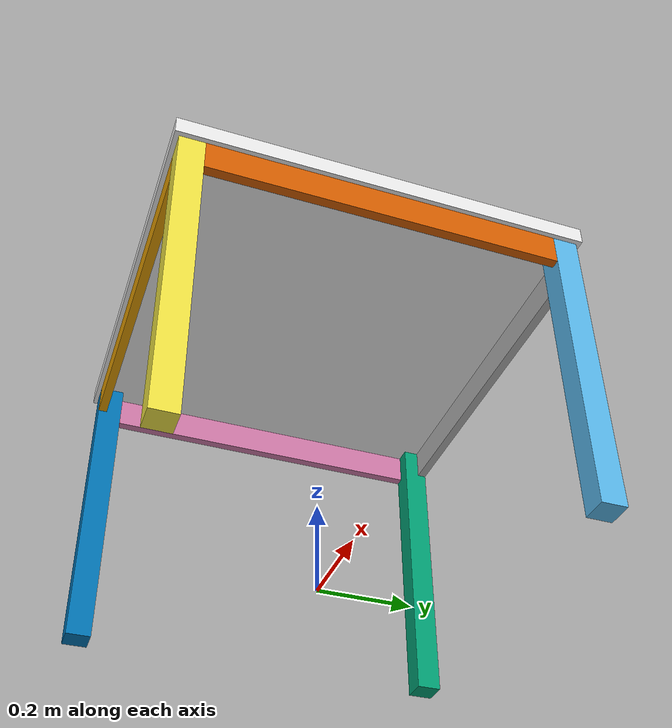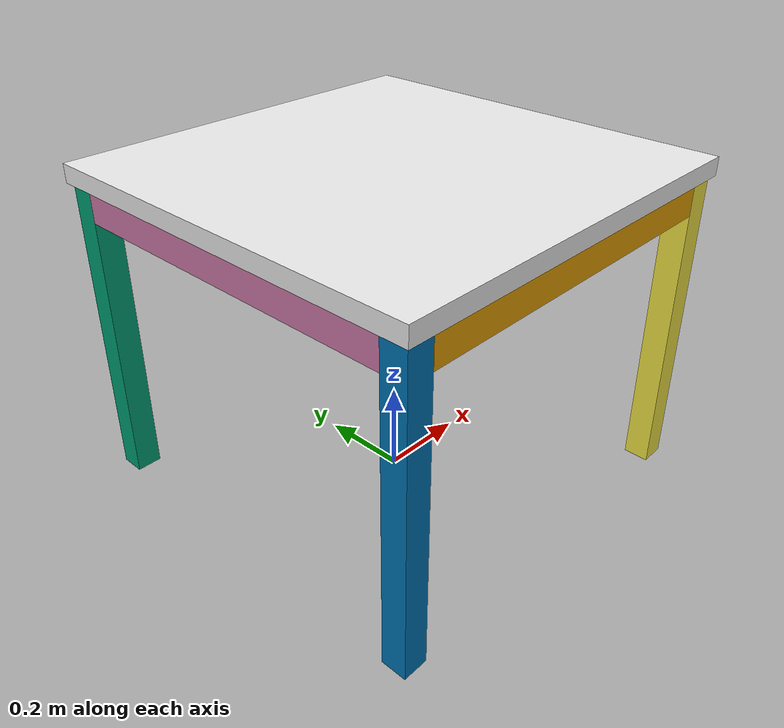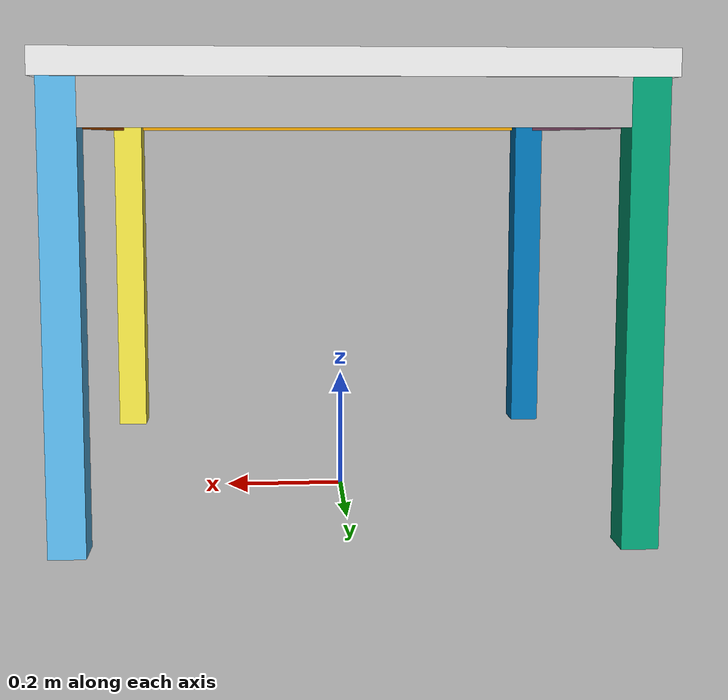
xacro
<?xml version="1.0"?>
<robot name="table"
       xmlns:xacro="http://www.ros.org/wiki/xacro"
       xmlns:xi="http://www.w3.org/2001/XInclude"
       xmlns:gazebo="http://playerstage.sourceforge.net/gazebo/xmlschema/#gz"
       xmlns:model="http://playerstage.sourceforge.net/gazebo/xmlschema/#model"
       xmlns:sensor="http://playerstage.sourceforge.net/gazebo/xmlschema/#sensor"
       xmlns:body="http://playerstage.sourceforge.net/gazebo/xmlschema/#body"
       xmlns:geom="http://playerstage.sourceforge.net/gazebo/xmlschema/#geom"
       xmlns:joint="http://playerstage.sourceforge.net/gazebo/xmlschema/#joint"
       xmlns:interface="http://playerstage.sourceforge.net/gazebo/xmlschema/#interface"
       xmlns:rendering="http://playerstage.sourceforge.net/gazebo/xmlschema/#rendering"
       xmlns:renderable="http://playerstage.sourceforge.net/gazebo/xmlschema/#renderable"
       xmlns:controller="http://playerstage.sourceforge.net/gazebo/xmlschema/#controller"
       xmlns:physics="http://playerstage.sourceforge.net/gazebo/xmlschema/#physics">

  <xacro:property name="table_height" value="0.74" />
  <xacro:property name="table_width" value="0.9" />
  <xacro:property name="table_depth" value="0.9" />
  <xacro:property name="table_x" value="0.98" />
  <xacro:property name="table_y" value="0.0" />
  <xacro:property name="table_z" value="0.0" />

  <xacro:property name="table_top_thickness" value="0.04"/>

  <xacro:property name="M_PI" value="3.1415926535897931" />

  <link name="table_top_link">
    <inertial>
      <mass value="5.0" />
      <origin xyz="0.0 0.0 0.0" />
      <inertia ixx="0" ixy="0"  ixz="0"
               iyy="0" iyz="0"
               izz="0" />
    </inertial>
    <visual>
      <origin xyz="0.0 0.0 ${table_z+table_height-table_top_thickness/2}" />
      <geometry>
        <box size="${table_width} ${table_depth} ${table_top_thickness}" />
      </geometry>
    </visual>
    <collision>
      <origin xyz="0.0 0.0 ${table_z+table_height-table_top_thickness/2}" />
      <geometry>
        <box size="${table_width} ${table_depth} ${table_top_thickness}" />
      </geometry>
    </collision>
  </link>
  <gazebo reference="table_top_link">
    <material>Gazebo/White</material>
    <mu1>50.0</mu1>
    <mu2>50.0</mu2>
    <kp>1000000.0</kp>
    <kd>1.0</kd>
  </gazebo>

    <xacro:macro name="legs" params="suffix parent pos1 pos2">

        <link name="leg_${suffix}_link">
            <inertial>
		<origin xyz="0 0 0" />
                <mass value="3" />
                <inertia  ixx="0" ixy="0" ixz="0"
                          iyy="0" iyz="0"
                          izz="0" />
            </inertial>

            <visual>
                <origin xyz="0 0 0" />
                <geometry>
                    <box size="0.055 0.055 ${table_height-table_top_thickness}" />
                </geometry>
            </visual>

            <collision>
                <origin xyz="0 0 0" />
                <geometry>
                    <box size="0.055 0.055 ${table_height-table_top_thickness}" />
                </geometry>
            </collision>
        </link>

	<gazebo reference="legs">
		<material>Gazebo/White</material>
		<turnGravityOff>false</turnGravityOff>
	</gazebo>
      <joint name="leg_${suffix}_joint" type="fixed" >
    	<parent link="table_top_link" />
    	<origin xyz="${0.0+pos1*(table_width/2-0.0375)} ${table_y+pos2*(table_depth/2-0.0375)} ${table_z+table_height/2}" rpy="0 0 0" />
        <child link="leg_${suffix}_link" />
      </joint>

  </xacro:macro>
        <legs suffix="left_front" parent="table_top_link"  pos1="1" pos2="1"/>
	<legs suffix="left_back" parent="table_top_link"  pos1="-1" pos2="1"/>
        <legs suffix="right_front" parent="table_top_link"  pos1="1" pos2="-1"/>
	<legs suffix="right_back" parent="table_top_link"  pos1="-1" pos2="-1"/>

 <xacro:macro name="structure_lath" params="suffix parent pos1 pos2 box_size">

        <link name="lath_${suffix}_link">
            <inertial>
		<origin xyz="0 0 0" />
                <mass value="1" />
                <inertia  ixx="0" ixy="0" ixz="0"
                          iyy="0" iyz="0"
                          izz="0" />
            </inertial>

            <visual>
                <origin xyz="0 0 0" />
                <geometry>
		    <box size="${box_size}" />
                </geometry>
            </visual>

            <collision>
                <origin xyz="0 0 0" />
                <geometry>
		    <box size="${box_size}" />
                </geometry>
            </collision>
        </link>

	<gazebo reference="structure_lath">
		<material>Gazebo/White</material>
		<turnGravityOff>false</turnGravityOff>
	</gazebo>
      <joint name="lath_${suffix}_joint" type="fixed" >
    	<parent link="table_top_link" />

    	<origin xyz="${0.0+pos1*(table_width/2-0.02)} ${table_y+pos2*(table_depth/2-0.02)} ${table_z+table_height-table_top_thickness-0.035}" rpy="0 0 0" />
        <child link="lath_${suffix}_link" />
      </joint>

  </xacro:macro>

        <structure_lath suffix="left_front" parent="table_top_link"  pos1="1" pos2="0" box_size="0.02 0.77 0.07"/>
	<structure_lath suffix="left_back" parent="table_top_link"  pos1="-1" pos2="0" box_size="0.02 0.77 0.07"/>
        <structure_lath suffix="right_front" parent="table_top_link"  pos1="0" pos2="1" box_size="0.77 0.02 0.07"/>
	<structure_lath suffix="right_back" parent="table_top_link"  pos1="0" pos2="-1" box_size="0.77 0.02 0.07"/>

</robot>
